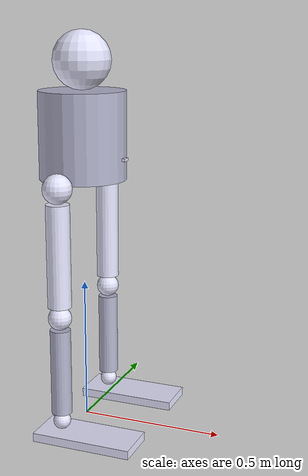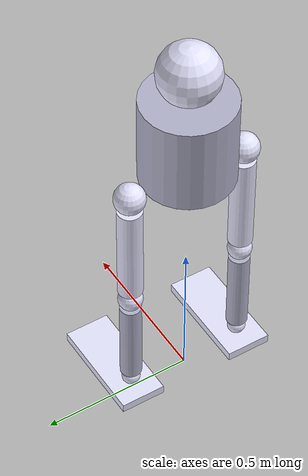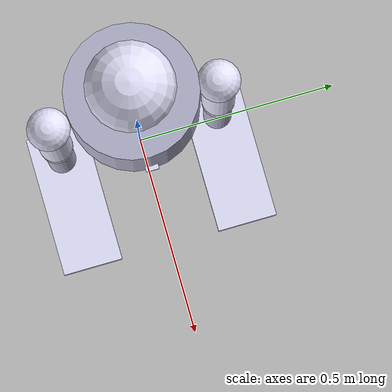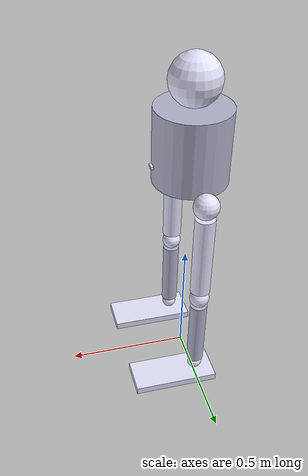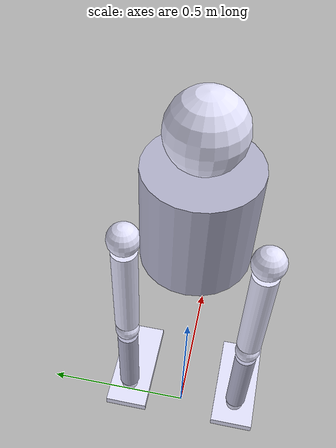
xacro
<?xml version="1.0"?>
<robot xmlns:xacro="http://www.ros.org/wiki/xacro" name="myrobot_st3">
  <!-- Body properties -->
  <xacro:property name="body_radius" value="0.15" />
  <xacro:property name="body_length" value="0.3" />
  <xacro:property name="body_mass" value="5.0" />
  <xacro:property name="body_ixx" value="0.1" />
  <xacro:property name="body_iyy" value="0.1" />
  <xacro:property name="body_izz" value="0.05" />

  <!-- Hip properties -->
  <xacro:property name="hip_radius" value="0.05" />
  <xacro:property name="hip_mass" value="0.5" />
  <xacro:property name="hip_ixx" value="0.01" />
  <xacro:property name="hip_iyy" value="0.01" />
  <xacro:property name="hip_izz" value="0.01" />

  <!-- Thigh properties -->
  <xacro:property name="thigh_radius" value="0.04" />
  <xacro:property name="thigh_length" value="0.35" />
  <xacro:property name="thigh_mass" value="1.5" />
  <xacro:property name="thigh_ixx" value="0.02" />
  <xacro:property name="thigh_iyy" value="0.02" />
  <xacro:property name="thigh_izz" value="0.01" />

  <!-- Knee properties -->
  <xacro:property name="knee_radius" value="0.04" />
  <xacro:property name="knee_mass" value="0.5" />
  <xacro:property name="knee_ixx" value="0.01" />
  <xacro:property name="knee_iyy" value="0.01" />
  <xacro:property name="knee_izz" value="0.01" />

  <!-- Shin properties -->
  <xacro:property name="shin_radius" value="0.035" />
  <xacro:property name="shin_length" value="0.30" />
  <xacro:property name="shin_mass" value="1.5" />
  <xacro:property name="shin_ixx" value="0.015" />
  <xacro:property name="shin_iyy" value="0.015" />
  <xacro:property name="shin_izz" value="0.008" />

  <!-- Ankle properties -->
  <xacro:property name="ankle_radius" value="0.03" />
  <xacro:property name="ankle_mass" value="0.5" />
  <xacro:property name="ankle_ixx" value="0.01" />
  <xacro:property name="ankle_iyy" value="0.01" />
  <xacro:property name="ankle_izz" value="0.01" />

  <!-- Foot properties -->
  <xacro:property name="foot_length" value="0.35" />
  <xacro:property name="foot_width" value="0.15" />
  <xacro:property name="foot_height" value="0.03" />
  <xacro:property name="foot_offset_front" value="0.1" />
  <xacro:property name="foot_mass" value="0.5" />
  <xacro:property name="foot_ixx" value="0.001" />
  <xacro:property name="foot_iyy" value="0.001" />
  <xacro:property name="foot_izz" value="0.0005" />

  <!-- Head properties -->
  <xacro:property name="head_radius" value="0.1" />
  <xacro:property name="head_mass" value="1.0" />
  <xacro:property name="head_ixx" value="0.005" />
  <xacro:property name="head_iyy" value="0.005" />
  <xacro:property name="head_izz" value="0.005" />

  <!-- IMU properties -->
  <xacro:property name="imu_length" value="0.02" />
  <xacro:property name="imu_width" value="0.03" />
  <xacro:property name="imu_height" value="0.01" />
  <xacro:property name="imu_mass" value="0.01" />
  <xacro:property name="imu_ixx" value="0.00001" />
  <xacro:property name="imu_iyy" value="0.00001" />
  <xacro:property name="imu_izz" value="0.00001" />

  <!-- Controle -->
  <xacro:property name="joint_damping" value="0.2" />
  <xacro:property name="joint_friction" value="0.01" />

  <!-- Materials -->
  <material name="robot_material_1">
    <color rgba="0.7 0.7 0.8 1"/>
  </material>
  <material name="robot_material_2">
    <color rgba="0.9 0.9 1.0 1"/>
  </material>

  <!-- altura total -->
  <xacro:property name="leg_total_length" value="${hip_radius + thigh_length + 2 * knee_radius + shin_length + 2 * ankle_radius + foot_height}" />
  <!-- body_offset: body_length/2 desloca o posicao Z do centro do cilindro (corpo do robo) para a sua base inferior, assim nao fica metade do corpo enterrado no chao -->
  <!-- body_offset: leg_total_length da espaco para as pernas, para elas nao ficarem enterradas no chao -->
  <xacro:property name="body_offset" value="${body_length/2 + leg_total_length}" />
  <!-- Conversao de graus para radianos -->
  <xacro:property name="deg_to_rad" value="${3.14159 / 180}" />

  <!-- Body (main cylinder) -->
  <link name="base_link">
    <visual>
      <origin xyz="0 0 ${body_offset}"/>
      <geometry>
        <cylinder length="${body_length}" radius="${body_radius}"/>
      </geometry>
      <material name="robot_material_1"/>
    </visual>
    <collision>
      <origin xyz="0 0 ${body_offset}"/>
      <geometry>
        <cylinder length="${body_length}" radius="${body_radius}"/>
      </geometry>
    </collision>
    <inertial>
      <origin xyz="0 0 ${body_offset}"/>
      <mass value="${body_mass}"/>
      <inertia ixx="${body_ixx}" ixy="0.0" ixz="0.0" iyy="${body_iyy}" iyz="0.0" izz="${body_izz}"/>
    </inertial>
  </link>

  <!-- IMU (simulated sensor, offset from body center) -->
  <link name="imu_link">
    <visual>
      <origin xyz="0 0 0" rpy="0 0 0"/>
      <geometry>
        <box size="${imu_length} ${imu_width} ${imu_height}"/>
      </geometry>
      <material name="robot_material_2"/>
    </visual>
    <collision>
      <origin xyz="0 0 0" rpy="0 0 0"/>
      <geometry>
        <box size="${imu_length} ${imu_width} ${imu_height}"/>
      </geometry>
    </collision>
    <inertial>
      <mass value="${imu_mass}"/>
      <inertia ixx="${imu_ixx}" ixy="0.0" ixz="0.0" iyy="${imu_iyy}" iyz="0.0" izz="${imu_izz}"/>
    </inertial>
  </link>

  <joint name="base_to_imu" type="fixed">
    <parent link="base_link"/>
    <child link="imu_link"/>
    <!-- Z: Como o corpo principal e posicionado em 0 0 0, body_offset move a IMU para o centro do corpo -->
    <!-- Z: body_length/4 move a IMU um pouco para baixo, como se estivesse posicionado ela na cintura -->
    <origin xyz="${body_radius} 0 ${body_offset - body_length/4}" rpy="0 0 0"/>
  </joint>

  <!-- Head (sphere) -->
  <link name="head_link">
    <visual>
      <!-- Z: head_radius shifts the Z plane from the heads's center to its base -->
      <origin rpy="0 0 0" xyz="0 0 ${head_radius}"/>
      <geometry>
        <sphere radius="${head_radius}"/>
      </geometry>
      <material name="robot_material_2"/>
    </visual>
    <collision>
      <origin rpy="0 0 0" xyz="0 0 ${head_radius}"/>
      <geometry>
        <sphere radius="${head_radius}"/>
      </geometry>
    </collision>
    <inertial>
      <origin rpy="0 0 0" xyz="0 0 ${head_radius}"/>
      <mass value="${head_mass}"/>
      <inertia ixx="${head_ixx}" ixy="0.0" ixz="0.0" iyy="${head_iyy}" iyz="0.0" izz="${head_izz}"/>
    </inertial>
  </link>

  <!-- Head joint: body to head -->
  <joint name="base_to_head" type="fixed">
    <parent link="base_link"/>
    <child link="head_link"/>
    <!-- Z: Como o corpo principal e posicionado em 0 0 0, body_offset move a joint para o centro do corpo -->
    <!-- Z: body_length/2 move a joint para o topo do corpo -->
	  <origin xyz="0 0 ${body_offset + body_length/2}"/>
  </joint>

  <!-- Leg macro (creates left/right leg: thigh, shin, foot) -->
  <xacro:macro name="leg" params="prefix reflect">
    <!-- Hip joint: base_link to hip ball -->
    <joint name="base_to_${prefix}_hip_ball" type="revolute">
      <parent link="base_link"/>
      <child link="${prefix}_hip_ball_link"/>
      <!-- Z: Como o corpo principal e posicionado em 0 0 0, body_offset move o centro da esfera/articulacao para o centro do corpo -->
      <!-- Z: Diminuir body_length/2 move o centro da esfera/articulacao para a base inferior do corpo -->
      <!-- Y: body_radius posiciona o centro da esfera/articulacao do quadril na borda do corpo -->
      <!-- Y: hip_radius tira a esfera/articulacao de dentro do corpo, caso contrario metade da esfera/articulacao ficaria dentro do corpo -->
      <origin xyz="0 ${(body_radius + hip_radius) * reflect} ${body_offset - body_length/2}"/>
      <axis xyz="0 1 0"/> <!-- Movimento frontal -->
      <limit lower="${-90 * deg_to_rad}" upper="${90 * deg_to_rad}" effort="1000" velocity="5"/>
      <dynamics damping="${joint_damping}" friction="${joint_friction}"/>
    </joint>

    <!-- Hip Ball -->
    <link name="${prefix}_hip_ball_link">
      <visual>
        <origin rpy="0 0 0" xyz="0 0 0"/>
        <geometry>
          <sphere radius="${hip_radius}"/>
        </geometry>
        <material name="robot_material_2"/>
      </visual>
      <collision>
        <origin rpy="0 0 0" xyz="0 0 0"/>
        <geometry>
          <sphere radius="${hip_radius}"/>
        </geometry>
      </collision>
      <inertial>
        <mass value="${hip_mass}"/>
        <inertia ixx="${hip_ixx}" ixy="0.0" ixz="0.0" iyy="${hip_iyy}" iyz="0.0" izz="${hip_izz}"/>
      </inertial>
    </link>

    <!-- Hip joint: hip_ball_link to thigh -->
    <joint name="hip_ball_to_${prefix}_thigh" type="revolute">
      <parent link="${prefix}_hip_ball_link"/>
      <child link="${prefix}_thigh_link"/>
      <origin xyz="0 0 0"/>
      <axis xyz="1 0 0"/> <!-- Movimento lateral -->
      <limit lower="${-30 * deg_to_rad}" upper="${30 * deg_to_rad}" effort="1000" velocity="5"/>
      <dynamics damping="${joint_damping}" friction="${joint_friction}"/>
    </joint>

    <!-- Thigh -->
    <link name="${prefix}_thigh_link">
      <visual>
        <!-- Z: hip_radius desloca o centro da coxa para fora da esfera/articulacao do quadril -->
        <!-- Z: thigh_length/2 desloca a coxa para baixo, para que seu topo encoste na esfera/articulacao do quadril -->
        <origin rpy="0 0 0" xyz="0 0 ${-thigh_length/2 - hip_radius}"/>
        <geometry>
          <cylinder length="${thigh_length}" radius="${thigh_radius}"/>
        </geometry>
        <material name="robot_material_2"/>
      </visual>
      <collision>
        <origin rpy="0 0 0" xyz="0 0 ${-thigh_length/2 - hip_radius}"/>
        <geometry>
          <cylinder length="${thigh_length}" radius="${thigh_radius}"/>
        </geometry>
      </collision>
      <inertial>
        <origin rpy="0 0 0" xyz="0 0 ${-thigh_length/2 - hip_radius}"/>
        <mass value="${thigh_mass}"/>
        <inertia ixx="${thigh_ixx}" ixy="0.0" ixz="0.0" iyy="${thigh_iyy}" iyz="0.0" izz="${thigh_izz}"/>
      </inertial>
    </link>

    <!-- Knee joint: thigh to knee ball -->
    <joint name="${prefix}_thigh_to_knee_ball" type="fixed">
      <parent link="${prefix}_thigh_link"/>
      <child link="${prefix}_knee_ball_link"/>
      <!-- Z: Como o parent e a coxa, o centro da esfera/articulacao do joelho coincide inicialmente com sua referencia que é o hip joint posicionado na base inferior do body -->
      <!-- Z: Diminuir hip_radius + thigh_length faz o centro da esfera/articulacao do joelho coincidir com a base inferior da coxa -->
      <!-- Z: Diminuir knee_radius faz o topo da esfera/articulacao do joelho coincidir com a base inferior da coxa -->
      <origin xyz="0 0 ${-hip_radius - thigh_length - knee_radius }"/>
    </joint>

    <!-- Knee Ball -->
    <link name="${prefix}_knee_ball_link">
      <visual>
        <origin rpy="0 0 0" xyz="0 0 0"/>
        <geometry>
          <sphere radius="${knee_radius}"/>
        </geometry>
        <material name="robot_material_2"/>
      </visual>
      <collision>
        <origin rpy="0 0 0" xyz="0 0 0"/>
        <geometry>
          <sphere radius="${knee_radius}"/>
        </geometry>
      </collision>
      <inertial>
        <mass value="${knee_mass}"/>
        <inertia ixx="${knee_ixx}" ixy="0.0" ixz="0.0" iyy="${knee_iyy}" iyz="0.0" izz="${knee_izz}"/>
      </inertial>
    </link>

    <!-- Knee joint: knee ball to shin -->
    <joint name="${prefix}_knee_ball_to_shin" type="revolute">
      <parent link="${prefix}_knee_ball_link"/>
      <child link="${prefix}_shin_link"/>
      <origin xyz="0 0 0"/>
      <axis xyz="0 1 0"/>
      <limit lower="${0 * deg_to_rad}" upper="${135 * deg_to_rad}" effort="1000" velocity="5"/>
      <dynamics damping="${joint_damping}" friction="${joint_friction}"/>
    </joint>

    <!-- Shin -->
    <link name="${prefix}_shin_link">
      <visual>
        <!-- Z: knee_radius desloca o centro da canela para fora da esfera/articulacao do joelho -->
        <!-- Z: shin_length/2 desloca a canela para baixo, para que seu topo encoste na esfera/articulacao do joelho -->
        <origin rpy="0 0 0" xyz="0 0 ${-shin_length/2 - knee_radius}"/>
        <geometry>
          <cylinder length="${shin_length}" radius="${shin_radius}"/>
        </geometry>
        <material name="robot_material_1"/>
      </visual>
      <collision>
        <origin rpy="0 0 0" xyz="0 0 ${-shin_length/2 - knee_radius}"/>
        <geometry>
          <cylinder length="${shin_length}" radius="${shin_radius}"/>
        </geometry>
      </collision>
      <inertial>
        <origin rpy="0 0 0" xyz="0 0 ${-shin_length/2 - knee_radius}"/>
        <mass value="${shin_mass}"/>
        <inertia ixx="${shin_ixx}" ixy="0.0" ixz="0.0" iyy="${shin_iyy}" iyz="0.0" izz="${shin_izz}"/>
      </inertial>
    </link>

    <!-- Ankle joint: shin to ankle ball -->
    <joint name="${prefix}_shin_to_ankle_ball" type="fixed">
      <parent link="${prefix}_shin_link"/>
      <child link="${prefix}_ankle_ball_link"/>
      <!-- Z: Como o parent e a canela, o centro da esfera/articulacao do tornozelo coincide inicialmente com sua referencia que é o knee joint -->
      <!-- Z: Diminuir knee_radius + shin_length faz o centro da esfera/articulacao do tornozelo coincidir com a base inferior da canela -->
      <!-- Z: Diminuir ankle_radius faz o topo da esfera/articulacao do tornozelo coincidir com a base inferior da canela -->
      <origin xyz="0 0 ${-knee_radius - shin_length - ankle_radius}"/>
    </joint>

    <!-- Ankle Ball -->
    <link name="${prefix}_ankle_ball_link">
      <visual>
        <origin rpy="0 0 0" xyz="0 0 0"/>
        <geometry>
          <sphere radius="${ankle_radius}"/>
        </geometry>
        <material name="robot_material_2"/>
      </visual>
      <collision>
        <origin rpy="0 0 0" xyz="0 0 0"/>
        <geometry>
          <sphere radius="${ankle_radius}"/>
        </geometry>
      </collision>
      <inertial>
        <mass value="${ankle_mass}"/>
        <inertia ixx="${ankle_ixx}" ixy="0.0" ixz="0.0" iyy="${ankle_iyy}" iyz="0.0" izz="${ankle_izz}"/>
      </inertial>
    </link>

    <!-- Ankle joint: ankle ball to foot -->
    <joint name="${prefix}_ankle_ball_to_foot" type="revolute">
      <parent link="${prefix}_ankle_ball_link"/>
      <child link="${prefix}_foot_link"/>
      <origin xyz="0 0 0"/>
      <axis xyz="0 1 0"/>
      <limit lower="${-30 * deg_to_rad}" upper="${75 * deg_to_rad}" effort="1000" velocity="5"/>
      <dynamics damping="${joint_damping}" friction="${joint_friction}"/>
    </joint>

    <!-- Foot -->
    <link name="${prefix}_foot_link">
      <visual>
        <!-- Z: ankle_radius desloca o centro do pe para fora da esfera/articulacao do tornozelo -->
        <!-- Z: foot_height/2 faz o pe sair da articulacao do tornozelo, coincidindo seu topo com o raio da esfera/articulacao -->
        <!-- X: foot_offset_front desloca o pe um pouco para frente, para parecer um pe normal em que ele fica mais para frente do que para tras -->
        <origin rpy="0 0 0" xyz="${foot_offset_front} 0 ${-ankle_radius - foot_height/2}"/>
        <geometry>
          <box size="${foot_length} ${foot_width} ${foot_height}"/>
        </geometry>
        <material name="robot_material_2"/>
      </visual>
      <collision>
        <origin rpy="0 0 0" xyz="${foot_offset_front} 0 ${-ankle_radius - foot_height/2}"/>
        <geometry>
          <box size="${foot_length} ${foot_width} ${foot_height}"/>
        </geometry>
      </collision>
      <inertial>
        <origin rpy="0 0 0" xyz="${foot_offset_front} 0 ${-ankle_radius - foot_height/2}"/>
        <mass value="${foot_mass}"/>
        <inertia ixx="${foot_ixx}" ixy="0.0" ixz="0.0" iyy="${foot_iyy}" iyz="0.0" izz="${foot_izz}"/>
      </inertial>
    </link>

  </xacro:macro>

  <!-- Instantiate right and left legs -->
  <xacro:leg prefix="right" reflect="-1" />
  <xacro:leg prefix="left" reflect="1" />

</robot>
